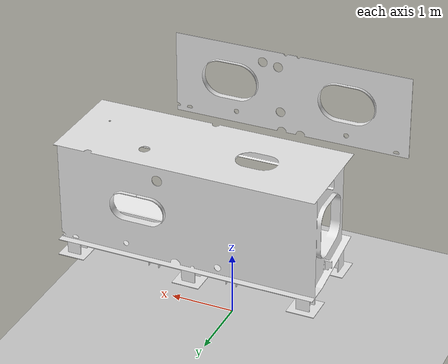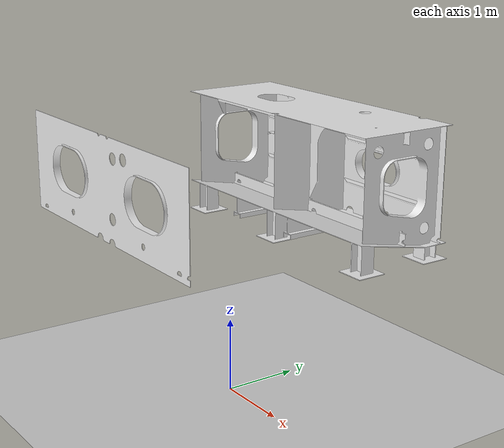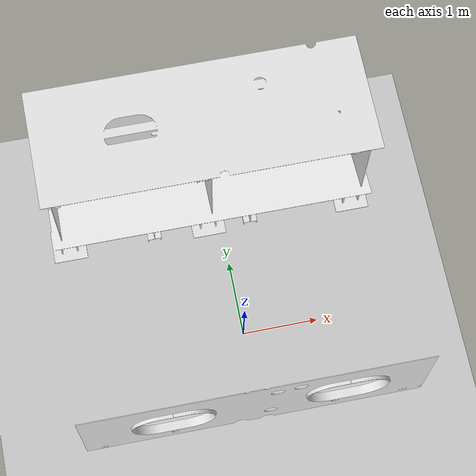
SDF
<?xml version="1.0"?>
<sdf version="1.6">
    <world name="default">
        <!-- A global light source -->
        <include>
            <uri>model://sun</uri>
            <pose>0 0 1 0 0 0</pose>
        </include>
        <!-- A ground plane -->
        <include>
            <uri>model://ground_plane</uri>
        </include>

        <!-- Add another light source -->

        <include>
            <uri>model://maquette</uri>
            <pose>-2 2 2 0 0 0</pose>
        </include>
    </world>
</sdf>

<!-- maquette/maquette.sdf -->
<sdf version="1.6">
  <model name="maquette">
    <static>false</static>
    <link name="link">
      <collision name="collision">
        <geometry>
            <mesh>
                <uri>model://maquette/meshes/maquette_n_support.stl</uri>
                <scale>0.001 0.001 0.001</scale>
            </mesh>
        </geometry>
        <surface>
            <friction>
              <ode>
                <mu>100</mu>
                <mu2>50</mu2>
              </ode>
            </friction>
        </surface>
        </collision>
        <visual name="visual">
            <geometry>
                <mesh>
                    <uri>model://maquette/meshes/maquette_n_support.stl</uri>
                    <scale>0.001 0.001 0.001</scale>
                </mesh>
            </geometry>
            <material>
                <script>
                    <uri>file://media/materials/scripts/gazebo.material</uri>
                    <name>Gazebo/White</name>
                </script>
            </material>
        </visual>
    </link>
  </model>
</sdf>
